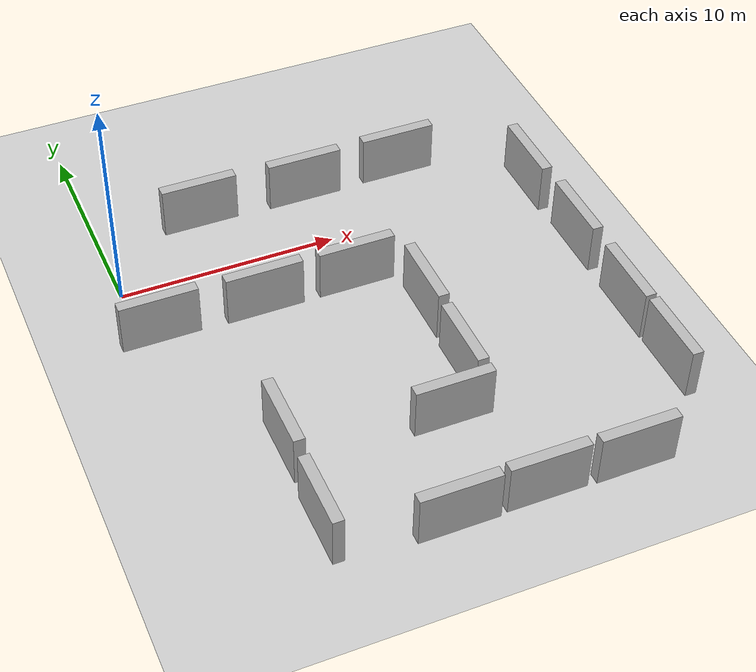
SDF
<sdf version="1.6">
 <world name="default">
  <light name="sun" type="directional">
   <pose>0 0 10 0 -0 0</pose>
   <diffuse>0.8 0.8 0.8 1</diffuse>
   <specular>0.1 0.1 0.1 1</specular>
   <attenuation>
    <range>1000</range>
    <constant>0.9</constant>
    <linear>0.01</linear>
    <quadratic>0.001</quadratic>
   </attenuation>
   <direction>-0.5 0.5 -1</direction>
  </light>
  <model name="ground_plane">
   <static>1</static>
   <link name="link">
    <collision name="collision">
     <geometry><plane><normal>0 0 1</normal><size>100 100</size></plane></geometry>
     <surface><friction><ode><mu>100</mu><mu2>50</mu2></ode></friction></surface>
    </collision>
    <visual name="visual">
     <cast_shadows>0</cast_shadows>
     <geometry><plane><normal>0 0 1</normal><size>100 100</size></plane></geometry>
     <material>
      <script><uri>file://media/materials/scripts/gazebo.material</uri><name>Gazebo/Grey</name></script>
     </material>
    </visual>
   </link>
  </model>
  <gravity>0 0 -9.8</gravity>
  <magnetic_field>6e-06 2.3e-05 -4.2e-05</magnetic_field>
  <atmosphere type="adiabatic"/>
  <physics name="default_physics" default="0" type="ode">
   <max_step_size>0.001</max_step_size>
   <real_time_factor>1</real_time_factor>
   <real_time_update_rate>1000</real_time_update_rate>
  </physics>
  <scene><ambient>0.4 0.4 0.4 1</ambient><background>0.7 0.7 0.7 1</background><shadows>1</shadows></scene>
  <spherical_coordinates>
   <surface_model>EARTH_WGS84</surface_model>
   <latitude_deg>0</latitude_deg>
   <longitude_deg>0</longitude_deg>
   <elevation>0</elevation>
   <heading_deg>0</heading_deg>
  </spherical_coordinates>
  <model name="mywall0">
   <static>1</static>
   <link name="link">
    <pose>0 0 1.4 0 -0 0</pose>
    <collision name="collision"><geometry><box><size>3.5 0.5 2.4</size></box></geometry></collision>
    <visual name="visual">
     <cast_shadows>0</cast_shadows>
     <geometry><box><size>3.5 0.5 2.4</size></box></geometry>
     <material>
      <script>
       <uri>model://mywall0/materials/scripts</uri>
       <uri>model://mywall0/materials/textures</uri>
       <name>vrc/mywall0</name>
      </script>
     </material>
    </visual>
   </link>
   <pose>0.792242 -3.2462 0 0 -0 0</pose>
  </model>
  <model name="mywall1">
   <static>1</static>
   <link name="link">
    <pose>0 0 1.4 0 -0 0</pose>
    <collision name="collision"><geometry><box><size>3.5 0.5 2.4</size></box></geometry></collision>
    <visual name="visual">
     <cast_shadows>0</cast_shadows>
     <geometry><box><size>3.5 0.5 2.4</size></box></geometry>
     <material>
      <script>
       <uri>model://mywall1/materials/scripts</uri>
       <uri>model://mywall1/materials/textures</uri>
       <name>vrc/mywall1</name>
      </script>
     </material>
    </visual>
   </link>
   <pose>4.78062 3.21763 0 0 -0 0</pose>
  </model>
  <model name="mywall_net10">
   <static>1</static>
   <link name="link">
    <pose>0 0 1.4 0 -0 0</pose>
    <collision name="collision"><geometry><box><size>3.5 0.5 2.4</size></box></geometry></collision>
    <visual name="visual">
     <cast_shadows>0</cast_shadows>
     <geometry><box><size>3.5 0.5 2.4</size></box></geometry>
     <material>
      <script>
       <uri>model://mywall_net10/materials/scripts</uri>
       <uri>model://mywall_net10/materials/textures</uri>
       <name>vrc/mywall_net10</name>
      </script>
     </material>
    </visual>
   </link>
   <pose>9.72926 -3.30666 0 0 -0 0</pose>
  </model>
  <model name="mywall_net1">
   <static>1</static>
   <link name="link">
    <pose>0 0 1.4 0 -0 0</pose>
    <collision name="collision"><geometry><box><size>3.5 0.5 2.4</size></box></geometry></collision>
    <visual name="visual">
     <cast_shadows>0</cast_shadows>
     <geometry><box><size>3.5 0.5 2.4</size></box></geometry>
     <material>
      <script>
       <uri>model://mywall_net1/materials/scripts</uri>
       <uri>model://mywall_net1/materials/textures</uri>
       <name>vrc/mywall_net1</name>
      </script>
     </material>
    </visual>
   </link>
   <pose>14.5258 3.19882 0 0 -0 0</pose>
  </model>
  <model name="mywall_net0_0">
   <static>1</static>
   <link name="link">
    <pose>0 0 1.4 0 -0 0</pose>
    <collision name="collision"><geometry><box><size>3.5 0.5 2.4</size></box></geometry></collision>
    <visual name="visual">
     <cast_shadows>0</cast_shadows>
     <geometry><box><size>3.5 0.5 2.4</size></box></geometry>
     <material>
      <script>
       <uri>model://mywall_net0/materials/scripts</uri>
       <uri>model://mywall_net0/materials/textures</uri>
       <name>vrc/mywall_net0</name>
      </script>
     </material>
    </visual>
   </link>
   <pose>19.7505 -0.207105 0 0 -0 1.57</pose>
  </model>
  <model name="mywall_net4">
   <static>1</static>
   <link name="link">
    <pose>0 0 1.4 0 -0 0</pose>
    <collision name="collision"><geometry><box><size>3.5 0.5 2.4</size></box></geometry></collision>
    <visual name="visual">
     <cast_shadows>0</cast_shadows>
     <geometry><box><size>3.5 0.5 2.4</size></box></geometry>
     <material>
      <script>
       <uri>model://mywall_net4/materials/scripts</uri>
       <uri>model://mywall_net4/materials/textures</uri>
       <name>vrc/mywall_net4</name>
      </script>
     </material>
    </visual>
   </link>
   <pose>11.7511 -10.0225 0 0 -0 1.57</pose>
  </model>
  <model name="mywall_net5">
   <static>1</static>
   <link name="link">
    <pose>0 0 1.4 0 -0 0</pose>
    <collision name="collision"><geometry><box><size>3.5 0.5 2.4</size></box></geometry></collision>
    <visual name="visual">
     <cast_shadows>0</cast_shadows>
     <geometry><box><size>3.5 0.5 2.4</size></box></geometry>
     <material>
      <script>
       <uri>model://mywall_net5/materials/scripts</uri>
       <uri>model://mywall_net5/materials/textures</uri>
       <name>vrc/mywall_net5</name>
      </script>
     </material>
    </visual>
   </link>
   <pose>19.8677 -13.0423 0 0 -0 1.57</pose>
  </model>
  <model name="mywall_net6">
   <static>1</static>
   <link name="link">
    <pose>0 0 1.4 0 -0 0</pose>
    <collision name="collision"><geometry><box><size>3.5 0.5 2.4</size></box></geometry></collision>
    <visual name="visual">
     <cast_shadows>0</cast_shadows>
     <geometry><box><size>3.5 0.5 2.4</size></box></geometry>
     <material>
      <script>
       <uri>model://mywall_net6/materials/scripts</uri>
       <uri>model://mywall_net6/materials/textures</uri>
       <name>vrc/mywall_net6</name>
      </script>
     </material>
    </visual>
   </link>
   <pose>15.744 -17.272 0 0 -0 0</pose>
  </model>
  <model name="mywall_net9">
   <static>1</static>
   <link name="link">
    <pose>0 0 1.4 0 -0 0</pose>
    <collision name="collision"><geometry><box><size>3.5 0.5 2.4</size></box></geometry></collision>
    <visual name="visual">
     <cast_shadows>0</cast_shadows>
     <geometry><box><size>3.5 0.5 2.4</size></box></geometry>
     <material>
      <script>
       <uri>model://mywall_net9/materials/scripts</uri>
       <uri>model://mywall_net9/materials/textures</uri>
       <name>vrc/mywall_net9</name>
      </script>
     </material>
    </visual>
   </link>
   <pose>8.06406 -17.3007 0 0 -0 0</pose>
  </model>
  <model name="mywall_net0">
   <static>1</static>
   <link name="link">
    <pose>0 0 1.4 0 -0 0</pose>
    <collision name="collision"><geometry><box><size>3.5 0.5 2.4</size></box></geometry></collision>
    <visual name="visual">
     <cast_shadows>0</cast_shadows>
     <geometry><box><size>3.5 0.5 2.4</size></box></geometry>
     <material>
      <script>
       <uri>model://mywall_net0/materials/scripts</uri>
       <uri>model://mywall_net0/materials/textures</uri>
       <name>vrc/mywall_net0</name>
      </script>
     </material>
    </visual>
   </link>
   <pose>5.47478 -3.31408 0 0 -0 0</pose>
  </model>
  <model name="mywall_net10_0">
   <static>1</static>
   <link name="link">
    <pose>0 0 1.4 0 -0 0</pose>
    <collision name="collision"><geometry><box><size>3.5 0.5 2.4</size></box></geometry></collision>
    <visual name="visual">
     <cast_shadows>0</cast_shadows>
     <geometry><box><size>3.5 0.5 2.4</size></box></geometry>
     <material>
      <script>
       <uri>model://mywall_net10/materials/scripts</uri>
       <uri>model://mywall_net10/materials/textures</uri>
       <name>vrc/mywall_net10</name>
      </script>
     </material>
    </visual>
   </link>
   <pose>9.83444 3.11795 0 0 -0 0</pose>
  </model>
  <model name="mywall_net2">
   <static>1</static>
   <link name="link">
    <pose>0 0 1.4 0 -0 0</pose>
    <collision name="collision"><geometry><box><size>3.5 0.5 2.4</size></box></geometry></collision>
    <visual name="visual">
     <cast_shadows>0</cast_shadows>
     <geometry><box><size>3.5 0.5 2.4</size></box></geometry>
     <material>
      <script>
       <uri>model://mywall_net2/materials/scripts</uri>
       <uri>model://mywall_net2/materials/textures</uri>
       <name>vrc/mywall_net2</name>
      </script>
     </material>
    </visual>
   </link>
   <pose>11.8545 -17.2251 0 0 -0 0</pose>
  </model>
  <model name="mywall_net11_clone">
   <static>1</static>
   <link name="link">
    <pose>0 0 1.4 0 -0 0</pose>
    <collision name="collision"><geometry><box><size>3.5 0.5 2.4</size></box></geometry></collision>
    <visual name="visual">
     <cast_shadows>0</cast_shadows>
     <geometry><box><size>3.5 0.5 2.4</size></box></geometry>
     <material>
      <script>
       <uri>model://mywall_net11/materials/scripts</uri>
       <uri>model://mywall_net11/materials/textures</uri>
       <name>vrc/mywall_net11</name>
      </script>
     </material>
    </visual>
   </link>
   <pose>19.845 -9.34383 0 0 -0 1.57</pose>
  </model>
  <model name="mywall_net5_0">
   <static>1</static>
   <link name="link">
    <pose>0 0 1.4 0 -0 0</pose>
    <collision name="collision"><geometry><box><size>3.5 0.5 2.4</size></box></geometry></collision>
    <visual name="visual">
     <cast_shadows>0</cast_shadows>
     <geometry><box><size>3.5 0.5 2.4</size></box></geometry>
     <material>
      <script>
       <uri>model://mywall_net5/materials/scripts</uri>
       <uri>model://mywall_net5/materials/textures</uri>
       <name>vrc/mywall_net5</name>
      </script>
     </material>
    </visual>
   </link>
   <pose>11.8646 -6.02943 0 0 -0 1.57</pose>
  </model>
  <model name="mywall_net8">
   <static>1</static>
   <link name="link">
    <pose>0 0 1.4 0 -0 0</pose>
    <collision name="collision"><geometry><box><size>3.5 0.5 2.4</size></box></geometry></collision>
    <visual name="visual">
     <cast_shadows>0</cast_shadows>
     <geometry><box><size>3.5 0.5 2.4</size></box></geometry>
     <material>
      <script>
       <uri>model://mywall_net8/materials/scripts</uri>
       <uri>model://mywall_net8/materials/textures</uri>
       <name>vrc/mywall_net8</name>
      </script>
     </material>
    </visual>
   </link>
   <pose>19.8699 -4.74009 0 0 -0 1.57</pose>
  </model>
  <model name="mywall1_0_clone">
   <static>1</static>
   <link name="link">
    <pose>0 0 1.4 0 -0 0</pose>
    <collision name="collision"><geometry><box><size>3.5 0.5 2.4</size></box></geometry></collision>
    <visual name="visual">
     <cast_shadows>0</cast_shadows>
     <geometry><box><size>3.5 0.5 2.4</size></box></geometry>
     <material>
      <script>
       <uri>model://mywall1/materials/scripts</uri>
       <uri>model://mywall1/materials/textures</uri>
       <name>vrc/mywall1</name>
      </script>
     </material>
    </visual>
   </link>
   <pose>10.1833 -12.2985 0 0 -0 0</pose>
  </model>
  <model name="mywall0_0">
   <static>1</static>
   <link name="link">
    <pose>0 0 1.4 0 -0 0</pose>
    <collision name="collision"><geometry><box><size>3.5 0.5 2.4</size></box></geometry></collision>
    <visual name="visual">
     <cast_shadows>0</cast_shadows>
     <geometry><box><size>3.5 0.5 2.4</size></box></geometry>
     <material>
      <script>
       <uri>model://mywall0/materials/scripts</uri>
       <uri>model://mywall0/materials/textures</uri>
       <name>vrc/mywall0</name>
      </script>
     </material>
    </visual>
   </link>
   <pose>3.21753 -15.4615 0 0 -0 1.57</pose>
  </model>
  <model name="mywall_net1_clone">
   <static>1</static>
   <link name="link">
    <pose>0 0 1.4 0 -0 0</pose>
    <collision name="collision"><geometry><box><size>3.5 0.5 2.4</size></box></geometry></collision>
    <visual name="visual">
     <cast_shadows>0</cast_shadows>
     <geometry><box><size>3.5 0.5 2.4</size></box></geometry>
     <material>
      <script>
       <uri>model://mywall_net1/materials/scripts</uri>
       <uri>model://mywall_net1/materials/textures</uri>
       <name>vrc/mywall_net1</name>
      </script>
     </material>
    </visual>
   </link>
   <pose>3.34853 -11.2172 0 0 -0 1.57</pose>
  </model>
 </world>
</sdf>
